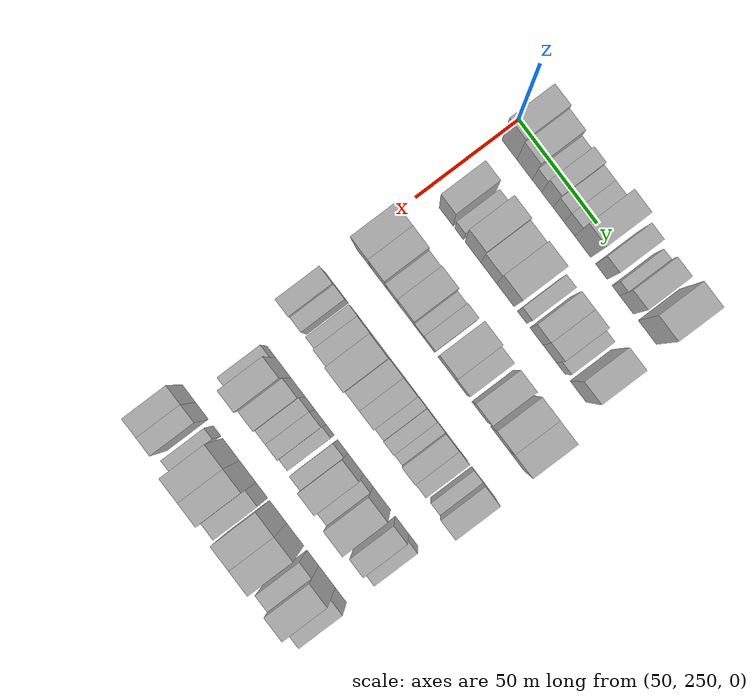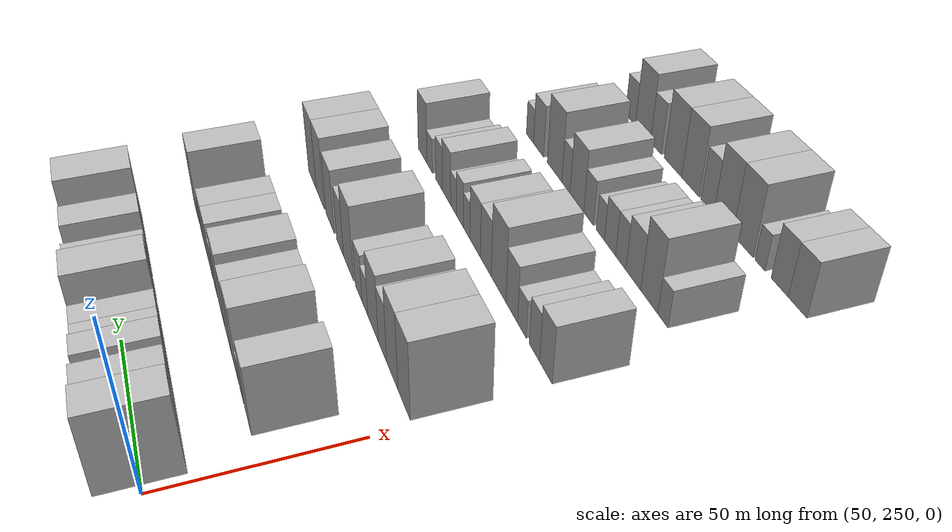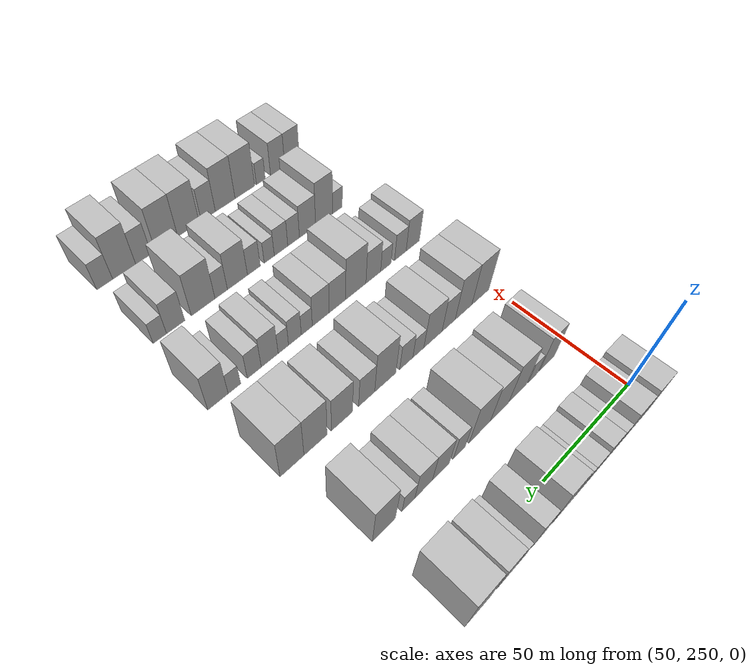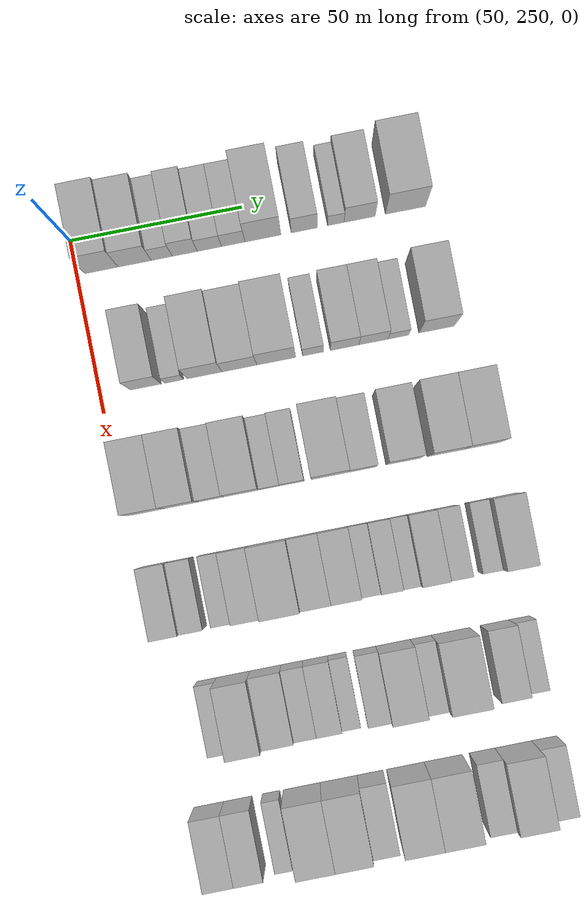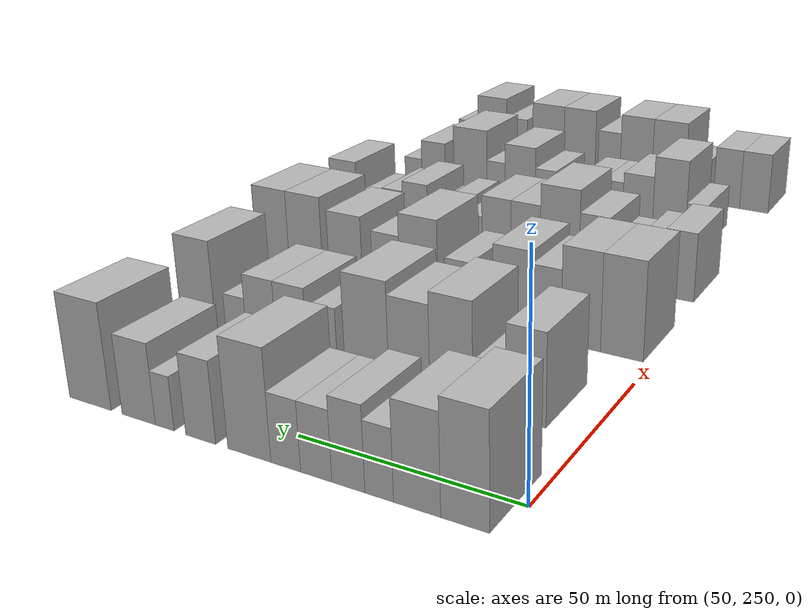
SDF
<sdf version="1.6">
 <world name="default">
  <model name="building_96">
   <static>1</static>
   <pose>50.0000 257.2296 0 0.000000 0.000000 0.000000</pose>
   <link name="link">
    <pose>0 0 12.00 0 0 0</pose>
    <collision name="collision"><geometry><box><size>20.0000 9.6259 24.0000</size></box></geometry></collision>
    <visual name="visual">
     <cast_shadows>0</cast_shadows>
     <geometry><box><size>20.0000 9.6259 24.0000</size></box></geometry>
     <material>
      <script>
       <uri>model://HANNAS_wall/materials/scripts</uri>
       <uri>model://HANNAS_wall/materials/textures</uri>
       <name>vrc/HANNAS_wall</name>
      </script>
     </material>
    </visual>
   </link>
  </model>
  <model name="building_97">
   <static>1</static>
   <pose>50.0000 266.8738 0 0.000000 0.000000 0.000000</pose>
   <link name="link">
    <pose>0 0 10.50 0 0 0</pose>
    <collision name="collision"><geometry><box><size>20.0000 9.6624 21.0000</size></box></geometry></collision>
    <visual name="visual">
     <cast_shadows>0</cast_shadows>
     <geometry><box><size>20.0000 9.6624 21.0000</size></box></geometry>
     <material>
      <script>
       <uri>model://HANNAS_wall/materials/scripts</uri>
       <uri>model://HANNAS_wall/materials/textures</uri>
       <name>vrc/HANNAS_wall</name>
      </script>
     </material>
    </visual>
   </link>
  </model>
  <model name="building_98">
   <static>1</static>
   <pose>50.0000 274.7397 0 0.000000 0.000000 0.000000</pose>
   <link name="link">
    <pose>0 0 7.50 0 0 0</pose>
    <collision name="collision"><geometry><box><size>20.0000 6.0694 15.0000</size></box></geometry></collision>
    <visual name="visual">
     <cast_shadows>0</cast_shadows>
     <geometry><box><size>20.0000 6.0694 15.0000</size></box></geometry>
     <material>
      <script>
       <uri>model://HANNAS_wall/materials/scripts</uri>
       <uri>model://HANNAS_wall/materials/textures</uri>
       <name>vrc/HANNAS_wall</name>
      </script>
     </material>
    </visual>
   </link>
  </model>
  <model name="building_99">
   <static>1</static>
   <pose>50.0000 281.3883 0 0.000000 0.000000 0.000000</pose>
   <link name="link">
    <pose>0 0 9.00 0 0 0</pose>
    <collision name="collision"><geometry><box><size>20.0000 7.2277 18.0000</size></box></geometry></collision>
    <visual name="visual">
     <cast_shadows>0</cast_shadows>
     <geometry><box><size>20.0000 7.2277 18.0000</size></box></geometry>
     <material>
      <script>
       <uri>model://HANNAS_wall/materials/scripts</uri>
       <uri>model://HANNAS_wall/materials/textures</uri>
       <name>vrc/HANNAS_wall</name>
      </script>
     </material>
    </visual>
   </link>
  </model>
  <model name="building_100">
   <static>1</static>
   <pose>50.0000 288.5182 0 0.000000 0.000000 0.000000</pose>
   <link name="link">
    <pose>0 0 7.50 0 0 0</pose>
    <collision name="collision"><geometry><box><size>20.0000 7.0322 15.0000</size></box></geometry></collision>
    <visual name="visual">
     <cast_shadows>0</cast_shadows>
     <geometry><box><size>20.0000 7.0322 15.0000</size></box></geometry>
     <material>
      <script>
       <uri>model://HANNAS_wall/materials/scripts</uri>
       <uri>model://HANNAS_wall/materials/textures</uri>
       <name>vrc/HANNAS_wall</name>
      </script>
     </material>
    </visual>
   </link>
  </model>
  <model name="building_101">
   <static>1</static>
   <pose>50.0000 295.4579 0 0.000000 0.000000 0.000000</pose>
   <link name="link">
    <pose>0 0 7.50 0 0 0</pose>
    <collision name="collision"><geometry><box><size>20.0000 6.8472 15.0000</size></box></geometry></collision>
    <visual name="visual">
     <cast_shadows>0</cast_shadows>
     <geometry><box><size>20.0000 6.8472 15.0000</size></box></geometry>
     <material>
      <script>
       <uri>model://HANNAS_wall/materials/scripts</uri>
       <uri>model://HANNAS_wall/materials/textures</uri>
       <name>vrc/HANNAS_wall</name>
      </script>
     </material>
    </visual>
   </link>
  </model>
  <model name="building_102">
   <static>1</static>
   <pose>50.0000 304.0497 0 0.000000 0.000000 0.000000</pose>
   <link name="link">
    <pose>0 0 12.00 0 0 0</pose>
    <collision name="collision"><geometry><box><size>20.0000 10.3363 24.0000</size></box></geometry></collision>
    <visual name="visual">
     <cast_shadows>0</cast_shadows>
     <geometry><box><size>20.0000 10.3363 24.0000</size></box></geometry>
     <material>
      <script>
       <uri>model://HANNAS_wall/materials/scripts</uri>
       <uri>model://HANNAS_wall/materials/textures</uri>
       <name>vrc/HANNAS_wall</name>
      </script>
     </material>
    </visual>
   </link>
  </model>
  <model name="building_103">
   <static>1</static>
   <pose>50.0000 315.9747 0 0.000000 0.000000 0.000000</pose>
   <link name="link">
    <pose>0 0 9.00 0 0 0</pose>
    <collision name="collision"><geometry><box><size>20.0000 7.5137 18.0000</size></box></geometry></collision>
    <visual name="visual">
     <cast_shadows>0</cast_shadows>
     <geometry><box><size>20.0000 7.5137 18.0000</size></box></geometry>
     <material>
      <script>
       <uri>model://HANNAS_wall/materials/scripts</uri>
       <uri>model://HANNAS_wall/materials/textures</uri>
       <name>vrc/HANNAS_wall</name>
      </script>
     </material>
    </visual>
   </link>
  </model>
  <model name="building_104">
   <static>1</static>
   <pose>50.0000 325.1511 0 0.000000 0.000000 0.000000</pose>
   <link name="link">
    <pose>0 0 6.00 0 0 0</pose>
    <collision name="collision"><geometry><box><size>20.0000 4.8390 12.0000</size></box></geometry></collision>
    <visual name="visual">
     <cast_shadows>0</cast_shadows>
     <geometry><box><size>20.0000 4.8390 12.0000</size></box></geometry>
     <material>
      <script>
       <uri>model://HANNAS_wall/materials/scripts</uri>
       <uri>model://HANNAS_wall/materials/textures</uri>
       <name>vrc/HANNAS_wall</name>
      </script>
     </material>
    </visual>
   </link>
  </model>
  <model name="building_105">
   <static>1</static>
   <pose>50.0000 332.0387 0 0.000000 0.000000 0.000000</pose>
   <link name="link">
    <pose>0 0 9.00 0 0 0</pose>
    <collision name="collision"><geometry><box><size>20.0000 8.9363 18.0000</size></box></geometry></collision>
    <visual name="visual">
     <cast_shadows>0</cast_shadows>
     <geometry><box><size>20.0000 8.9363 18.0000</size></box></geometry>
     <material>
      <script>
       <uri>model://HANNAS_wall/materials/scripts</uri>
       <uri>model://HANNAS_wall/materials/textures</uri>
       <name>vrc/HANNAS_wall</name>
      </script>
     </material>
    </visual>
   </link>
  </model>
  <model name="building_106">
   <static>1</static>
   <pose>50.0000 345.3159 0 0.000000 0.000000 0.000000</pose>
   <link name="link">
    <pose>0 0 12.00 0 0 0</pose>
    <collision name="collision"><geometry><box><size>20.0000 11.6181 24.0000</size></box></geometry></collision>
    <visual name="visual">
     <cast_shadows>0</cast_shadows>
     <geometry><box><size>20.0000 11.6181 24.0000</size></box></geometry>
     <material>
      <script>
       <uri>model://HANNAS_wall/materials/scripts</uri>
       <uri>model://HANNAS_wall/materials/textures</uri>
       <name>vrc/HANNAS_wall</name>
      </script>
     </material>
    </visual>
   </link>
  </model>
  <model name="building_223">
   <static>1</static>
   <pose>85.0000 263.2203 0 0.000000 0.000000 0.000000</pose>
   <link name="link">
    <pose>0 0 10.50 0 0 0</pose>
    <collision name="collision"><geometry><box><size>20.0000 8.9249 21.0000</size></box></geometry></collision>
    <visual name="visual">
     <cast_shadows>0</cast_shadows>
     <geometry><box><size>20.0000 8.9249 21.0000</size></box></geometry>
     <material>
      <script>
       <uri>model://HANNAS_wall/materials/scripts</uri>
       <uri>model://HANNAS_wall/materials/textures</uri>
       <name>vrc/HANNAS_wall</name>
      </script>
     </material>
    </visual>
   </link>
  </model>
  <model name="building_224">
   <static>1</static>
   <pose>85.0000 271.4352 0 0.000000 0.000000 0.000000</pose>
   <link name="link">
    <pose>0 0 6.00 0 0 0</pose>
    <collision name="collision"><geometry><box><size>20.0000 5.5049 12.0000</size></box></geometry></collision>
    <visual name="visual">
     <cast_shadows>0</cast_shadows>
     <geometry><box><size>20.0000 5.5049 12.0000</size></box></geometry>
     <material>
      <script>
       <uri>model://HANNAS_wall/materials/scripts</uri>
       <uri>model://HANNAS_wall/materials/textures</uri>
       <name>vrc/HANNAS_wall</name>
      </script>
     </material>
    </visual>
   </link>
  </model>
  <model name="building_225">
   <static>1</static>
   <pose>85.0000 280.2602 0 0.000000 0.000000 0.000000</pose>
   <link name="link">
    <pose>0 0 12.00 0 0 0</pose>
    <collision name="collision"><geometry><box><size>20.0000 10.1451 24.0000</size></box></geometry></collision>
    <visual name="visual">
     <cast_shadows>0</cast_shadows>
     <geometry><box><size>20.0000 10.1451 24.0000</size></box></geometry>
     <material>
      <script>
       <uri>model://HANNAS_wall/materials/scripts</uri>
       <uri>model://HANNAS_wall/materials/textures</uri>
       <name>vrc/HANNAS_wall</name>
      </script>
     </material>
    </visual>
   </link>
  </model>
  <model name="building_226">
   <static>1</static>
   <pose>85.0000 290.3650 0 0.000000 0.000000 0.000000</pose>
   <link name="link">
    <pose>0 0 10.50 0 0 0</pose>
    <collision name="collision"><geometry><box><size>20.0000 10.0643 21.0000</size></box></geometry></collision>
    <visual name="visual">
     <cast_shadows>0</cast_shadows>
     <geometry><box><size>20.0000 10.0643 21.0000</size></box></geometry>
     <material>
      <script>
       <uri>model://HANNAS_wall/materials/scripts</uri>
       <uri>model://HANNAS_wall/materials/textures</uri>
       <name>vrc/HANNAS_wall</name>
      </script>
     </material>
    </visual>
   </link>
  </model>
  <model name="building_227">
   <static>1</static>
   <pose>85.0000 300.9883 0 0.000000 0.000000 0.000000</pose>
   <link name="link">
    <pose>0 0 12.00 0 0 0</pose>
    <collision name="collision"><geometry><box><size>20.0000 11.1824 24.0000</size></box></geometry></collision>
    <visual name="visual">
     <cast_shadows>0</cast_shadows>
     <geometry><box><size>20.0000 11.1824 24.0000</size></box></geometry>
     <material>
      <script>
       <uri>model://HANNAS_wall/materials/scripts</uri>
       <uri>model://HANNAS_wall/materials/textures</uri>
       <name>vrc/HANNAS_wall</name>
      </script>
     </material>
    </visual>
   </link>
  </model>
  <model name="building_228">
   <static>1</static>
   <pose>85.0000 311.5909 0 0.000000 0.000000 0.000000</pose>
   <link name="link">
    <pose>0 0 7.50 0 0 0</pose>
    <collision name="collision"><geometry><box><size>20.0000 6.0228 15.0000</size></box></geometry></collision>
    <visual name="visual">
     <cast_shadows>0</cast_shadows>
     <geometry><box><size>20.0000 6.0228 15.0000</size></box></geometry>
     <material>
      <script>
       <uri>model://HANNAS_wall/materials/scripts</uri>
       <uri>model://HANNAS_wall/materials/textures</uri>
       <name>vrc/HANNAS_wall</name>
      </script>
     </material>
    </visual>
   </link>
  </model>
  <model name="building_229">
   <static>1</static>
   <pose>85.0000 320.7702 0 0.000000 0.000000 0.000000</pose>
   <link name="link">
    <pose>0 0 9.00 0 0 0</pose>
    <collision name="collision"><geometry><box><size>20.0000 8.3356 18.0000</size></box></geometry></collision>
    <visual name="visual">
     <cast_shadows>0</cast_shadows>
     <geometry><box><size>20.0000 8.3356 18.0000</size></box></geometry>
     <material>
      <script>
       <uri>model://HANNAS_wall/materials/scripts</uri>
       <uri>model://HANNAS_wall/materials/textures</uri>
       <name>vrc/HANNAS_wall</name>
      </script>
     </material>
    </visual>
   </link>
  </model>
  <model name="building_230">
   <static>1</static>
   <pose>85.0000 329.1271 0 0.000000 0.000000 0.000000</pose>
   <link name="link">
    <pose>0 0 9.00 0 0 0</pose>
    <collision name="collision"><geometry><box><size>20.0000 8.3782 18.0000</size></box></geometry></collision>
    <visual name="visual">
     <cast_shadows>0</cast_shadows>
     <geometry><box><size>20.0000 8.3782 18.0000</size></box></geometry>
     <material>
      <script>
       <uri>model://HANNAS_wall/materials/scripts</uri>
       <uri>model://HANNAS_wall/materials/textures</uri>
       <name>vrc/HANNAS_wall</name>
      </script>
     </material>
    </visual>
   </link>
  </model>
  <model name="building_231">
   <static>1</static>
   <pose>85.0000 336.2927 0 0.000000 0.000000 0.000000</pose>
   <link name="link">
    <pose>0 0 6.00 0 0 0</pose>
    <collision name="collision"><geometry><box><size>20.0000 5.9530 12.0000</size></box></geometry></collision>
    <visual name="visual">
     <cast_shadows>0</cast_shadows>
     <geometry><box><size>20.0000 5.9530 12.0000</size></box></geometry>
     <material>
      <script>
       <uri>model://HANNAS_wall/materials/scripts</uri>
       <uri>model://HANNAS_wall/materials/textures</uri>
       <name>vrc/HANNAS_wall</name>
      </script>
     </material>
    </visual>
   </link>
  </model>
  <model name="building_232">
   <static>1</static>
   <pose>85.0000 347.4036 0 0.000000 0.000000 0.000000</pose>
   <link name="link">
    <pose>0 0 12.00 0 0 0</pose>
    <collision name="collision"><geometry><box><size>20.0000 10.2689 24.0000</size></box></geometry></collision>
    <visual name="visual">
     <cast_shadows>0</cast_shadows>
     <geometry><box><size>20.0000 10.2689 24.0000</size></box></geometry>
     <material>
      <script>
       <uri>model://HANNAS_wall/materials/scripts</uri>
       <uri>model://HANNAS_wall/materials/textures</uri>
       <name>vrc/HANNAS_wall</name>
      </script>
     </material>
    </visual>
   </link>
  </model>
  <model name="building_345">
   <static>1</static>
   <pose>120.0000 257.0181 0 0.000000 0.000000 0.000000</pose>
   <link name="link">
    <pose>0 0 12.00 0 0 0</pose>
    <collision name="collision"><geometry><box><size>20.0000 10.2149 24.0000</size></box></geometry></collision>
    <visual name="visual">
     <cast_shadows>0</cast_shadows>
     <geometry><box><size>20.0000 10.2149 24.0000</size></box></geometry>
     <material>
      <script>
       <uri>model://HANNAS_wall/materials/scripts</uri>
       <uri>model://HANNAS_wall/materials/textures</uri>
       <name>vrc/HANNAS_wall</name>
      </script>
     </material>
    </visual>
   </link>
  </model>
  <model name="building_346">
   <static>1</static>
   <pose>120.0000 266.9807 0 0.000000 0.000000 0.000000</pose>
   <link name="link">
    <pose>0 0 12.00 0 0 0</pose>
    <collision name="collision"><geometry><box><size>20.0000 9.7103 24.0000</size></box></geometry></collision>
    <visual name="visual">
     <cast_shadows>0</cast_shadows>
     <geometry><box><size>20.0000 9.7103 24.0000</size></box></geometry>
     <material>
      <script>
       <uri>model://HANNAS_wall/materials/scripts</uri>
       <uri>model://HANNAS_wall/materials/textures</uri>
       <name>vrc/HANNAS_wall</name>
      </script>
     </material>
    </visual>
   </link>
  </model>
  <model name="building_347">
   <static>1</static>
   <pose>120.0000 275.5724 0 0.000000 0.000000 0.000000</pose>
   <link name="link">
    <pose>0 0 9.00 0 0 0</pose>
    <collision name="collision"><geometry><box><size>20.0000 7.4730 18.0000</size></box></geometry></collision>
    <visual name="visual">
     <cast_shadows>0</cast_shadows>
     <geometry><box><size>20.0000 7.4730 18.0000</size></box></geometry>
     <material>
      <script>
       <uri>model://HANNAS_wall/materials/scripts</uri>
       <uri>model://HANNAS_wall/materials/textures</uri>
       <name>vrc/HANNAS_wall</name>
      </script>
     </material>
    </visual>
   </link>
  </model>
  <model name="building_348">
   <static>1</static>
   <pose>120.0000 284.3160 0 0.000000 0.000000 0.000000</pose>
   <link name="link">
    <pose>0 0 10.50 0 0 0</pose>
    <collision name="collision"><geometry><box><size>20.0000 10.0143 21.0000</size></box></geometry></collision>
    <visual name="visual">
     <cast_shadows>0</cast_shadows>
     <geometry><box><size>20.0000 10.0143 21.0000</size></box></geometry>
     <material>
      <script>
       <uri>model://HANNAS_wall/materials/scripts</uri>
       <uri>model://HANNAS_wall/materials/textures</uri>
       <name>vrc/HANNAS_wall</name>
      </script>
     </material>
    </visual>
   </link>
  </model>
  <model name="building_349">
   <static>1</static>
   <pose>120.0000 292.2811 0 0.000000 0.000000 0.000000</pose>
   <link name="link">
    <pose>0 0 6.00 0 0 0</pose>
    <collision name="collision"><geometry><box><size>20.0000 5.9159 12.0000</size></box></geometry></collision>
    <visual name="visual">
     <cast_shadows>0</cast_shadows>
     <geometry><box><size>20.0000 5.9159 12.0000</size></box></geometry>
     <material>
      <script>
       <uri>model://HANNAS_wall/materials/scripts</uri>
       <uri>model://HANNAS_wall/materials/textures</uri>
       <name>vrc/HANNAS_wall</name>
      </script>
     </material>
    </visual>
   </link>
  </model>
  <model name="building_350">
   <static>1</static>
   <pose>120.0000 298.7088 0 0.000000 0.000000 0.000000</pose>
   <link name="link">
    <pose>0 0 7.50 0 0 0</pose>
    <collision name="collision"><geometry><box><size>20.0000 6.9394 15.0000</size></box></geometry></collision>
    <visual name="visual">
     <cast_shadows>0</cast_shadows>
     <geometry><box><size>20.0000 6.9394 15.0000</size></box></geometry>
     <material>
      <script>
       <uri>model://HANNAS_wall/materials/scripts</uri>
       <uri>model://HANNAS_wall/materials/textures</uri>
       <name>vrc/HANNAS_wall</name>
      </script>
     </material>
    </visual>
   </link>
  </model>
  <model name="building_351">
   <static>1</static>
   <pose>120.0000 309.5422 0 0.000000 0.000000 0.000000</pose>
   <link name="link">
    <pose>0 0 12.00 0 0 0</pose>
    <collision name="collision"><geometry><box><size>20.0000 10.7274 24.0000</size></box></geometry></collision>
    <visual name="visual">
     <cast_shadows>0</cast_shadows>
     <geometry><box><size>20.0000 10.7274 24.0000</size></box></geometry>
     <material>
      <script>
       <uri>model://HANNAS_wall/materials/scripts</uri>
       <uri>model://HANNAS_wall/materials/textures</uri>
       <name>vrc/HANNAS_wall</name>
      </script>
     </material>
    </visual>
   </link>
  </model>
  <model name="building_352">
   <static>1</static>
   <pose>120.0000 318.8589 0 0.000000 0.000000 0.000000</pose>
   <link name="link">
    <pose>0 0 9.00 0 0 0</pose>
    <collision name="collision"><geometry><box><size>20.0000 7.9062 18.0000</size></box></geometry></collision>
    <visual name="visual">
     <cast_shadows>0</cast_shadows>
     <geometry><box><size>20.0000 7.9062 18.0000</size></box></geometry>
     <material>
      <script>
       <uri>model://HANNAS_wall/materials/scripts</uri>
       <uri>model://HANNAS_wall/materials/textures</uri>
       <name>vrc/HANNAS_wall</name>
      </script>
     </material>
    </visual>
   </link>
  </model>
  <model name="building_353">
   <static>1</static>
   <pose>120.0000 330.7949 0 0.000000 0.000000 0.000000</pose>
   <link name="link">
    <pose>0 0 10.50 0 0 0</pose>
    <collision name="collision"><geometry><box><size>20.0000 9.9657 21.0000</size></box></geometry></collision>
    <visual name="visual">
     <cast_shadows>0</cast_shadows>
     <geometry><box><size>20.0000 9.9657 21.0000</size></box></geometry>
     <material>
      <script>
       <uri>model://HANNAS_wall/materials/scripts</uri>
       <uri>model://HANNAS_wall/materials/textures</uri>
       <name>vrc/HANNAS_wall</name>
      </script>
     </material>
    </visual>
   </link>
  </model>
  <model name="building_354">
   <static>1</static>
   <pose>120.0000 342.9899 0 0.000000 0.000000 0.000000</pose>
   <link name="link">
    <pose>0 0 12.00 0 0 0</pose>
    <collision name="collision"><geometry><box><size>20.0000 10.4243 24.0000</size></box></geometry></collision>
    <visual name="visual">
     <cast_shadows>0</cast_shadows>
     <geometry><box><size>20.0000 10.4243 24.0000</size></box></geometry>
     <material>
      <script>
       <uri>model://HANNAS_wall/materials/scripts</uri>
       <uri>model://HANNAS_wall/materials/textures</uri>
       <name>vrc/HANNAS_wall</name>
      </script>
     </material>
    </visual>
   </link>
  </model>
  <model name="building_355">
   <static>1</static>
   <pose>120.0000 353.4442 0 0.000000 0.000000 0.000000</pose>
   <link name="link">
    <pose>0 0 12.00 0 0 0</pose>
    <collision name="collision"><geometry><box><size>20.0000 10.4843 24.0000</size></box></geometry></collision>
    <visual name="visual">
     <cast_shadows>0</cast_shadows>
     <geometry><box><size>20.0000 10.4843 24.0000</size></box></geometry>
     <material>
      <script>
       <uri>model://HANNAS_wall/materials/scripts</uri>
       <uri>model://HANNAS_wall/materials/textures</uri>
       <name>vrc/HANNAS_wall</name>
      </script>
     </material>
    </visual>
   </link>
  </model>
  <model name="building_470">
   <static>1</static>
   <pose>155.0000 256.2885 0 0.000000 0.000000 0.000000</pose>
   <link name="link">
    <pose>0 0 9.00 0 0 0</pose>
    <collision name="collision"><geometry><box><size>20.0000 7.9339 18.0000</size></box></geometry></collision>
    <visual name="visual">
     <cast_shadows>0</cast_shadows>
     <geometry><box><size>20.0000 7.9339 18.0000</size></box></geometry>
     <material>
      <script>
       <uri>model://HANNAS_wall/materials/scripts</uri>
       <uri>model://HANNAS_wall/materials/textures</uri>
       <name>vrc/HANNAS_wall</name>
      </script>
     </material>
    </visual>
   </link>
  </model>
  <model name="building_471">
   <static>1</static>
   <pose>155.0000 263.6364 0 0.000000 0.000000 0.000000</pose>
   <link name="link">
    <pose>0 0 7.50 0 0 0</pose>
    <collision name="collision"><geometry><box><size>20.0000 6.7619 15.0000</size></box></geometry></collision>
    <visual name="visual">
     <cast_shadows>0</cast_shadows>
     <geometry><box><size>20.0000 6.7619 15.0000</size></box></geometry>
     <material>
      <script>
       <uri>model://HANNAS_wall/materials/scripts</uri>
       <uri>model://HANNAS_wall/materials/textures</uri>
       <name>vrc/HANNAS_wall</name>
      </script>
     </material>
    </visual>
   </link>
  </model>
  <model name="building_472">
   <static>1</static>
   <pose>155.0000 271.9672 0 0.000000 0.000000 0.000000</pose>
   <link name="link">
    <pose>0 0 6.00 0 0 0</pose>
    <collision name="collision"><geometry><box><size>20.0000 5.8996 12.0000</size></box></geometry></collision>
    <visual name="visual">
     <cast_shadows>0</cast_shadows>
     <geometry><box><size>20.0000 5.8996 12.0000</size></box></geometry>
     <material>
      <script>
       <uri>model://HANNAS_wall/materials/scripts</uri>
       <uri>model://HANNAS_wall/materials/textures</uri>
       <name>vrc/HANNAS_wall</name>
      </script>
     </material>
    </visual>
   </link>
  </model>
  <model name="building_473">
   <static>1</static>
   <pose>155.0000 279.0345 0 0.000000 0.000000 0.000000</pose>
   <link name="link">
    <pose>0 0 9.00 0 0 0</pose>
    <collision name="collision"><geometry><box><size>20.0000 8.2350 18.0000</size></box></geometry></collision>
    <visual name="visual">
     <cast_shadows>0</cast_shadows>
     <geometry><box><size>20.0000 8.2350 18.0000</size></box></geometry>
     <material>
      <script>
       <uri>model://HANNAS_wall/materials/scripts</uri>
       <uri>model://HANNAS_wall/materials/textures</uri>
       <name>vrc/HANNAS_wall</name>
      </script>
     </material>
    </visual>
   </link>
  </model>
  <model name="building_474">
   <static>1</static>
   <pose>155.0000 288.6920 0 0.000000 0.000000 0.000000</pose>
   <link name="link">
    <pose>0 0 12.00 0 0 0</pose>
    <collision name="collision"><geometry><box><size>20.0000 11.0800 24.0000</size></box></geometry></collision>
    <visual name="visual">
     <cast_shadows>0</cast_shadows>
     <geometry><box><size>20.0000 11.0800 24.0000</size></box></geometry>
     <material>
      <script>
       <uri>model://HANNAS_wall/materials/scripts</uri>
       <uri>model://HANNAS_wall/materials/textures</uri>
       <name>vrc/HANNAS_wall</name>
      </script>
     </material>
    </visual>
   </link>
  </model>
  <model name="building_475">
   <static>1</static>
   <pose>155.0000 298.5220 0 0.000000 0.000000 0.000000</pose>
   <link name="link">
    <pose>0 0 9.00 0 0 0</pose>
    <collision name="collision"><geometry><box><size>20.0000 8.5801 18.0000</size></box></geometry></collision>
    <visual name="visual">
     <cast_shadows>0</cast_shadows>
     <geometry><box><size>20.0000 8.5801 18.0000</size></box></geometry>
     <material>
      <script>
       <uri>model://HANNAS_wall/materials/scripts</uri>
       <uri>model://HANNAS_wall/materials/textures</uri>
       <name>vrc/HANNAS_wall</name>
      </script>
     </material>
    </visual>
   </link>
  </model>
  <model name="building_476">
   <static>1</static>
   <pose>155.0000 307.1271 0 0.000000 0.000000 0.000000</pose>
   <link name="link">
    <pose>0 0 9.00 0 0 0</pose>
    <collision name="collision"><geometry><box><size>20.0000 8.6301 18.0000</size></box></geometry></collision>
    <visual name="visual">
     <cast_shadows>0</cast_shadows>
     <geometry><box><size>20.0000 8.6301 18.0000</size></box></geometry>
     <material>
      <script>
       <uri>model://HANNAS_wall/materials/scripts</uri>
       <uri>model://HANNAS_wall/materials/textures</uri>
       <name>vrc/HANNAS_wall</name>
      </script>
     </material>
    </visual>
   </link>
  </model>
  <model name="building_477">
   <static>1</static>
   <pose>155.0000 314.1946 0 0.000000 0.000000 0.000000</pose>
   <link name="link">
    <pose>0 0 6.00 0 0 0</pose>
    <collision name="collision"><geometry><box><size>20.0000 5.5048 12.0000</size></box></geometry></collision>
    <visual name="visual">
     <cast_shadows>0</cast_shadows>
     <geometry><box><size>20.0000 5.5048 12.0000</size></box></geometry>
     <material>
      <script>
       <uri>model://HANNAS_wall/materials/scripts</uri>
       <uri>model://HANNAS_wall/materials/textures</uri>
       <name>vrc/HANNAS_wall</name>
      </script>
     </material>
    </visual>
   </link>
  </model>
  <model name="building_478">
   <static>1</static>
   <pose>155.0000 320.0830 0 0.000000 0.000000 0.000000</pose>
   <link name="link">
    <pose>0 0 7.50 0 0 0</pose>
    <collision name="collision"><geometry><box><size>20.0000 6.2720 15.0000</size></box></geometry></collision>
    <visual name="visual">
     <cast_shadows>0</cast_shadows>
     <geometry><box><size>20.0000 6.2720 15.0000</size></box></geometry>
     <material>
      <script>
       <uri>model://HANNAS_wall/materials/scripts</uri>
       <uri>model://HANNAS_wall/materials/textures</uri>
       <name>vrc/HANNAS_wall</name>
      </script>
     </material>
    </visual>
   </link>
  </model>
  <model name="building_479">
   <static>1</static>
   <pose>155.0000 325.7259 0 0.000000 0.000000 0.000000</pose>
   <link name="link">
    <pose>0 0 6.00 0 0 0</pose>
    <collision name="collision"><geometry><box><size>20.0000 5.0138 12.0000</size></box></geometry></collision>
    <visual name="visual">
     <cast_shadows>0</cast_shadows>
     <geometry><box><size>20.0000 5.0138 12.0000</size></box></geometry>
     <material>
      <script>
       <uri>model://HANNAS_wall/materials/scripts</uri>
       <uri>model://HANNAS_wall/materials/textures</uri>
       <name>vrc/HANNAS_wall</name>
      </script>
     </material>
    </visual>
   </link>
  </model>
  <model name="building_480">
   <static>1</static>
   <pose>155.0000 332.2254 0 0.000000 0.000000 0.000000</pose>
   <link name="link">
    <pose>0 0 9.00 0 0 0</pose>
    <collision name="collision"><geometry><box><size>20.0000 7.9851 18.0000</size></box></geometry></collision>
    <visual name="visual">
     <cast_shadows>0</cast_shadows>
     <geometry><box><size>20.0000 7.9851 18.0000</size></box></geometry>
     <material>
      <script>
       <uri>model://HANNAS_wall/materials/scripts</uri>
       <uri>model://HANNAS_wall/materials/textures</uri>
       <name>vrc/HANNAS_wall</name>
      </script>
     </material>
    </visual>
   </link>
  </model>
  <model name="building_481">
   <static>1</static>
   <pose>155.0000 339.4479 0 0.000000 0.000000 0.000000</pose>
   <link name="link">
    <pose>0 0 7.50 0 0 0</pose>
    <collision name="collision"><geometry><box><size>20.0000 6.4598 15.0000</size></box></geometry></collision>
    <visual name="visual">
     <cast_shadows>0</cast_shadows>
     <geometry><box><size>20.0000 6.4598 15.0000</size></box></geometry>
     <material>
      <script>
       <uri>model://HANNAS_wall/materials/scripts</uri>
       <uri>model://HANNAS_wall/materials/textures</uri>
       <name>vrc/HANNAS_wall</name>
      </script>
     </material>
    </visual>
   </link>
  </model>
  <model name="building_482">
   <static>1</static>
   <pose>155.0000 348.4878 0 0.000000 0.000000 0.000000</pose>
   <link name="link">
    <pose>0 0 6.00 0 0 0</pose>
    <collision name="collision"><geometry><box><size>20.0000 5.6201 12.0000</size></box></geometry></collision>
    <visual name="visual">
     <cast_shadows>0</cast_shadows>
     <geometry><box><size>20.0000 5.6201 12.0000</size></box></geometry>
     <material>
      <script>
       <uri>model://HANNAS_wall/materials/scripts</uri>
       <uri>model://HANNAS_wall/materials/textures</uri>
       <name>vrc/HANNAS_wall</name>
      </script>
     </material>
    </visual>
   </link>
  </model>
  <model name="building_483">
   <static>1</static>
   <pose>155.0000 355.7621 0 0.000000 0.000000 0.000000</pose>
   <link name="link">
    <pose>0 0 10.50 0 0 0</pose>
    <collision name="collision"><geometry><box><size>20.0000 8.9285 21.0000</size></box></geometry></collision>
    <visual name="visual">
     <cast_shadows>0</cast_shadows>
     <geometry><box><size>20.0000 8.9285 21.0000</size></box></geometry>
     <material>
      <script>
       <uri>model://HANNAS_wall/materials/scripts</uri>
       <uri>model://HANNAS_wall/materials/textures</uri>
       <name>vrc/HANNAS_wall</name>
      </script>
     </material>
    </visual>
   </link>
  </model>
  <model name="building_603">
   <static>1</static>
   <pose>190.0000 264.0551 0 0.000000 0.000000 0.000000</pose>
   <link name="link">
    <pose>0 0 6.00 0 0 0</pose>
    <collision name="collision"><geometry><box><size>20.0000 5.6473 12.0000</size></box></geometry></collision>
    <visual name="visual">
     <cast_shadows>0</cast_shadows>
     <geometry><box><size>20.0000 5.6473 12.0000</size></box></geometry>
     <material>
      <script>
       <uri>model://HANNAS_wall/materials/scripts</uri>
       <uri>model://HANNAS_wall/materials/textures</uri>
       <name>vrc/HANNAS_wall</name>
      </script>
     </material>
    </visual>
   </link>
  </model>
  <model name="building_604">
   <static>1</static>
   <pose>190.0000 271.7123 0 0.000000 0.000000 0.000000</pose>
   <link name="link">
    <pose>0 0 12.00 0 0 0</pose>
    <collision name="collision"><geometry><box><size>20.0000 9.6672 24.0000</size></box></geometry></collision>
    <visual name="visual">
     <cast_shadows>0</cast_shadows>
     <geometry><box><size>20.0000 9.6672 24.0000</size></box></geometry>
     <material>
      <script>
       <uri>model://HANNAS_wall/materials/scripts</uri>
       <uri>model://HANNAS_wall/materials/textures</uri>
       <name>vrc/HANNAS_wall</name>
      </script>
     </material>
    </visual>
   </link>
  </model>
  <model name="building_605">
   <static>1</static>
   <pose>190.0000 281.0396 0 0.000000 0.000000 0.000000</pose>
   <link name="link">
    <pose>0 0 9.00 0 0 0</pose>
    <collision name="collision"><geometry><box><size>20.0000 8.9873 18.0000</size></box></geometry></collision>
    <visual name="visual">
     <cast_shadows>0</cast_shadows>
     <geometry><box><size>20.0000 8.9873 18.0000</size></box></geometry>
     <material>
      <script>
       <uri>model://HANNAS_wall/materials/scripts</uri>
       <uri>model://HANNAS_wall/materials/textures</uri>
       <name>vrc/HANNAS_wall</name>
      </script>
     </material>
    </visual>
   </link>
  </model>
  <model name="building_606">
   <static>1</static>
   <pose>190.0000 288.6973 0 0.000000 0.000000 0.000000</pose>
   <link name="link">
    <pose>0 0 7.50 0 0 0</pose>
    <collision name="collision"><geometry><box><size>20.0000 6.3281 15.0000</size></box></geometry></collision>
    <visual name="visual">
     <cast_shadows>0</cast_shadows>
     <geometry><box><size>20.0000 6.3281 15.0000</size></box></geometry>
     <material>
      <script>
       <uri>model://HANNAS_wall/materials/scripts</uri>
       <uri>model://HANNAS_wall/materials/textures</uri>
       <name>vrc/HANNAS_wall</name>
      </script>
     </material>
    </visual>
   </link>
  </model>
  <model name="building_607">
   <static>1</static>
   <pose>190.0000 295.4608 0 0.000000 0.000000 0.000000</pose>
   <link name="link">
    <pose>0 0 7.50 0 0 0</pose>
    <collision name="collision"><geometry><box><size>20.0000 7.1991 15.0000</size></box></geometry></collision>
    <visual name="visual">
     <cast_shadows>0</cast_shadows>
     <geometry><box><size>20.0000 7.1991 15.0000</size></box></geometry>
     <material>
      <script>
       <uri>model://HANNAS_wall/materials/scripts</uri>
       <uri>model://HANNAS_wall/materials/textures</uri>
       <name>vrc/HANNAS_wall</name>
      </script>
     </material>
    </visual>
   </link>
  </model>
  <model name="building_608">
   <static>1</static>
   <pose>190.0000 301.6958 0 0.000000 0.000000 0.000000</pose>
   <link name="link">
    <pose>0 0 6.00 0 0 0</pose>
    <collision name="collision"><geometry><box><size>20.0000 5.2708 12.0000</size></box></geometry></collision>
    <visual name="visual">
     <cast_shadows>0</cast_shadows>
     <geometry><box><size>20.0000 5.2708 12.0000</size></box></geometry>
     <material>
      <script>
       <uri>model://HANNAS_wall/materials/scripts</uri>
       <uri>model://HANNAS_wall/materials/textures</uri>
       <name>vrc/HANNAS_wall</name>
      </script>
     </material>
    </visual>
   </link>
  </model>
  <model name="building_609">
   <static>1</static>
   <pose>190.0000 309.6189 0 0.000000 0.000000 0.000000</pose>
   <link name="link">
    <pose>0 0 7.50 0 0 0</pose>
    <collision name="collision"><geometry><box><size>20.0000 6.5754 15.0000</size></box></geometry></collision>
    <visual name="visual">
     <cast_shadows>0</cast_shadows>
     <geometry><box><size>20.0000 6.5754 15.0000</size></box></geometry>
     <material>
      <script>
       <uri>model://HANNAS_wall/materials/scripts</uri>
       <uri>model://HANNAS_wall/materials/textures</uri>
       <name>vrc/HANNAS_wall</name>
      </script>
     </material>
    </visual>
   </link>
  </model>
  <model name="building_610">
   <static>1</static>
   <pose>190.0000 317.9040 0 0.000000 0.000000 0.000000</pose>
   <link name="link">
    <pose>0 0 10.50 0 0 0</pose>
    <collision name="collision"><geometry><box><size>20.0000 9.9949 21.0000</size></box></geometry></collision>
    <visual name="visual">
     <cast_shadows>0</cast_shadows>
     <geometry><box><size>20.0000 9.9949 21.0000</size></box></geometry>
     <material>
      <script>
       <uri>model://HANNAS_wall/materials/scripts</uri>
       <uri>model://HANNAS_wall/materials/textures</uri>
       <name>vrc/HANNAS_wall</name>
      </script>
     </material>
    </visual>
   </link>
  </model>
  <model name="building_611">
   <static>1</static>
   <pose>190.0000 325.9269 0 0.000000 0.000000 0.000000</pose>
   <link name="link">
    <pose>0 0 7.50 0 0 0</pose>
    <collision name="collision"><geometry><box><size>20.0000 6.0508 15.0000</size></box></geometry></collision>
    <visual name="visual">
     <cast_shadows>0</cast_shadows>
     <geometry><box><size>20.0000 6.0508 15.0000</size></box></geometry>
     <material>
      <script>
       <uri>model://HANNAS_wall/materials/scripts</uri>
       <uri>model://HANNAS_wall/materials/textures</uri>
       <name>vrc/HANNAS_wall</name>
      </script>
     </material>
    </visual>
   </link>
  </model>
  <model name="building_612">
   <static>1</static>
   <pose>190.0000 334.5794 0 0.000000 0.000000 0.000000</pose>
   <link name="link">
    <pose>0 0 12.00 0 0 0</pose>
    <collision name="collision"><geometry><box><size>20.0000 11.2542 24.0000</size></box></geometry></collision>
    <visual name="visual">
     <cast_shadows>0</cast_shadows>
     <geometry><box><size>20.0000 11.2542 24.0000</size></box></geometry>
     <material>
      <script>
       <uri>model://HANNAS_wall/materials/scripts</uri>
       <uri>model://HANNAS_wall/materials/textures</uri>
       <name>vrc/HANNAS_wall</name>
      </script>
     </material>
    </visual>
   </link>
  </model>
  <model name="building_613">
   <static>1</static>
   <pose>190.0000 347.3700 0 0.000000 0.000000 0.000000</pose>
   <link name="link">
    <pose>0 0 9.00 0 0 0</pose>
    <collision name="collision"><geometry><box><size>20.0000 8.3272 18.0000</size></box></geometry></collision>
    <visual name="visual">
     <cast_shadows>0</cast_shadows>
     <geometry><box><size>20.0000 8.3272 18.0000</size></box></geometry>
     <material>
      <script>
       <uri>model://HANNAS_wall/materials/scripts</uri>
       <uri>model://HANNAS_wall/materials/textures</uri>
       <name>vrc/HANNAS_wall</name>
      </script>
     </material>
    </visual>
   </link>
  </model>
  <model name="building_614">
   <static>1</static>
   <pose>190.0000 354.5283 0 0.000000 0.000000 0.000000</pose>
   <link name="link">
    <pose>0 0 6.00 0 0 0</pose>
    <collision name="collision"><geometry><box><size>20.0000 5.9894 12.0000</size></box></geometry></collision>
    <visual name="visual">
     <cast_shadows>0</cast_shadows>
     <geometry><box><size>20.0000 5.9894 12.0000</size></box></geometry>
     <material>
      <script>
       <uri>model://HANNAS_wall/materials/scripts</uri>
       <uri>model://HANNAS_wall/materials/textures</uri>
       <name>vrc/HANNAS_wall</name>
      </script>
     </material>
    </visual>
   </link>
  </model>
  <model name="building_728">
   <static>1</static>
   <pose>225.0000 257.6713 0 0.000000 0.000000 0.000000</pose>
   <link name="link">
    <pose>0 0 9.00 0 0 0</pose>
    <collision name="collision"><geometry><box><size>20.0000 8.6046 18.0000</size></box></geometry></collision>
    <visual name="visual">
     <cast_shadows>0</cast_shadows>
     <geometry><box><size>20.0000 8.6046 18.0000</size></box></geometry>
     <material>
      <script>
       <uri>model://HANNAS_wall/materials/scripts</uri>
       <uri>model://HANNAS_wall/materials/textures</uri>
       <name>vrc/HANNAS_wall</name>
      </script>
     </material>
    </visual>
   </link>
  </model>
  <model name="building_729">
   <static>1</static>
   <pose>225.0000 266.0908 0 0.000000 0.000000 0.000000</pose>
   <link name="link">
    <pose>0 0 9.00 0 0 0</pose>
    <collision name="collision"><geometry><box><size>20.0000 8.2345 18.0000</size></box></geometry></collision>
    <visual name="visual">
     <cast_shadows>0</cast_shadows>
     <geometry><box><size>20.0000 8.2345 18.0000</size></box></geometry>
     <material>
      <script>
       <uri>model://HANNAS_wall/materials/scripts</uri>
       <uri>model://HANNAS_wall/materials/textures</uri>
       <name>vrc/HANNAS_wall</name>
      </script>
     </material>
    </visual>
   </link>
  </model>
  <model name="building_730">
   <static>1</static>
   <pose>225.0000 275.7365 0 0.000000 0.000000 0.000000</pose>
   <link name="link">
    <pose>0 0 6.00 0 0 0</pose>
    <collision name="collision"><geometry><box><size>20.0000 5.0567 12.0000</size></box></geometry></collision>
    <visual name="visual">
     <cast_shadows>0</cast_shadows>
     <geometry><box><size>20.0000 5.0567 12.0000</size></box></geometry>
     <material>
      <script>
       <uri>model://HANNAS_wall/materials/scripts</uri>
       <uri>model://HANNAS_wall/materials/textures</uri>
       <name>vrc/HANNAS_wall</name>
      </script>
     </material>
    </visual>
   </link>
  </model>
  <model name="building_731">
   <static>1</static>
   <pose>225.0000 284.6778 0 0.000000 0.000000 0.000000</pose>
   <link name="link">
    <pose>0 0 12.00 0 0 0</pose>
    <collision name="collision"><geometry><box><size>20.0000 10.8259 24.0000</size></box></geometry></collision>
    <visual name="visual">
     <cast_shadows>0</cast_shadows>
     <geometry><box><size>20.0000 10.8259 24.0000</size></box></geometry>
     <material>
      <script>
       <uri>model://HANNAS_wall/materials/scripts</uri>
       <uri>model://HANNAS_wall/materials/textures</uri>
       <name>vrc/HANNAS_wall</name>
      </script>
     </material>
    </visual>
   </link>
  </model>
  <model name="building_732">
   <static>1</static>
   <pose>225.0000 295.3720 0 0.000000 0.000000 0.000000</pose>
   <link name="link">
    <pose>0 0 12.00 0 0 0</pose>
    <collision name="collision"><geometry><box><size>20.0000 10.5626 24.0000</size></box></geometry></collision>
    <visual name="visual">
     <cast_shadows>0</cast_shadows>
     <geometry><box><size>20.0000 10.5626 24.0000</size></box></geometry>
     <material>
      <script>
       <uri>model://HANNAS_wall/materials/scripts</uri>
       <uri>model://HANNAS_wall/materials/textures</uri>
       <name>vrc/HANNAS_wall</name>
      </script>
     </material>
    </visual>
   </link>
  </model>
  <model name="building_733">
   <static>1</static>
   <pose>225.0000 304.3955 0 0.000000 0.000000 0.000000</pose>
   <link name="link">
    <pose>0 0 9.00 0 0 0</pose>
    <collision name="collision"><geometry><box><size>20.0000 7.4844 18.0000</size></box></geometry></collision>
    <visual name="visual">
     <cast_shadows>0</cast_shadows>
     <geometry><box><size>20.0000 7.4844 18.0000</size></box></geometry>
     <material>
      <script>
       <uri>model://HANNAS_wall/materials/scripts</uri>
       <uri>model://HANNAS_wall/materials/textures</uri>
       <name>vrc/HANNAS_wall</name>
      </script>
     </material>
    </visual>
   </link>
  </model>
  <model name="building_734">
   <static>1</static>
   <pose>225.0000 314.5937 0 0.000000 0.000000 0.000000</pose>
   <link name="link">
    <pose>0 0 12.00 0 0 0</pose>
    <collision name="collision"><geometry><box><size>20.0000 10.9120 24.0000</size></box></geometry></collision>
    <visual name="visual">
     <cast_shadows>0</cast_shadows>
     <geometry><box><size>20.0000 10.9120 24.0000</size></box></geometry>
     <material>
      <script>
       <uri>model://HANNAS_wall/materials/scripts</uri>
       <uri>model://HANNAS_wall/materials/textures</uri>
       <name>vrc/HANNAS_wall</name>
      </script>
     </material>
    </visual>
   </link>
  </model>
  <model name="building_735">
   <static>1</static>
   <pose>225.0000 325.5854 0 0.000000 0.000000 0.000000</pose>
   <link name="link">
    <pose>0 0 12.00 0 0 0</pose>
    <collision name="collision"><geometry><box><size>20.0000 11.0713 24.0000</size></box></geometry></collision>
    <visual name="visual">
     <cast_shadows>0</cast_shadows>
     <geometry><box><size>20.0000 11.0713 24.0000</size></box></geometry>
     <material>
      <script>
       <uri>model://HANNAS_wall/materials/scripts</uri>
       <uri>model://HANNAS_wall/materials/textures</uri>
       <name>vrc/HANNAS_wall</name>
      </script>
     </material>
    </visual>
   </link>
  </model>
  <model name="building_736">
   <static>1</static>
   <pose>225.0000 336.8316 0 0.000000 0.000000 0.000000</pose>
   <link name="link">
    <pose>0 0 9.00 0 0 0</pose>
    <collision name="collision"><geometry><box><size>20.0000 7.4212 18.0000</size></box></geometry></collision>
    <visual name="visual">
     <cast_shadows>0</cast_shadows>
     <geometry><box><size>20.0000 7.4212 18.0000</size></box></geometry>
     <material>
      <script>
       <uri>model://HANNAS_wall/materials/scripts</uri>
       <uri>model://HANNAS_wall/materials/textures</uri>
       <name>vrc/HANNAS_wall</name>
      </script>
     </material>
    </visual>
   </link>
  </model>
  <model name="building_737">
   <static>1</static>
   <pose>225.0000 345.8841 0 0.000000 0.000000 0.000000</pose>
   <link name="link">
    <pose>0 0 12.00 0 0 0</pose>
    <collision name="collision"><geometry><box><size>20.0000 10.6836 24.0000</size></box></geometry></collision>
    <visual name="visual">
     <cast_shadows>0</cast_shadows>
     <geometry><box><size>20.0000 10.6836 24.0000</size></box></geometry>
     <material>
      <script>
       <uri>model://HANNAS_wall/materials/scripts</uri>
       <uri>model://HANNAS_wall/materials/textures</uri>
       <name>vrc/HANNAS_wall</name>
      </script>
     </material>
    </visual>
   </link>
  </model>
  <model name="building_738">
   <static>1</static>
   <pose>225.0000 354.8424 0 0.000000 0.000000 0.000000</pose>
   <link name="link">
    <pose>0 0 7.50 0 0 0</pose>
    <collision name="collision"><geometry><box><size>20.0000 7.2331 15.0000</size></box></geometry></collision>
    <visual name="visual">
     <cast_shadows>0</cast_shadows>
     <geometry><box><size>20.0000 7.2331 15.0000</size></box></geometry>
     <material>
      <script>
       <uri>model://HANNAS_wall/materials/scripts</uri>
       <uri>model://HANNAS_wall/materials/textures</uri>
       <name>vrc/HANNAS_wall</name>
      </script>
     </material>
    </visual>
   </link>
  </model>
 </world>
</sdf>
